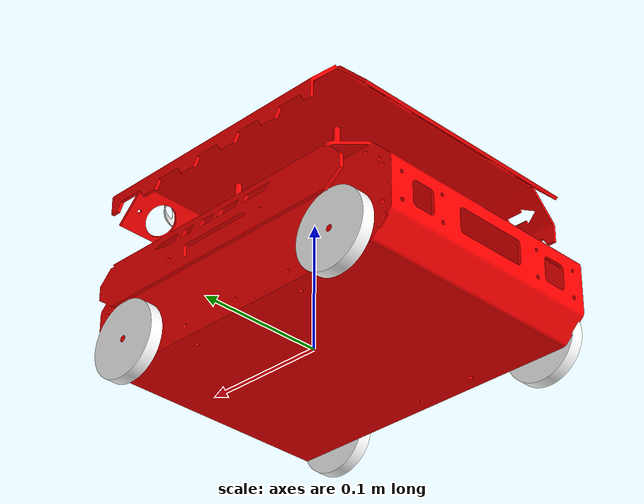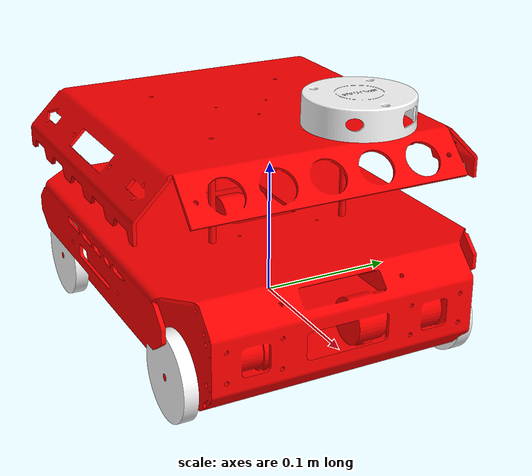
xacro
<?xml version="1.0" ?>
<robot name="bot" xmlns:xacro="http://www.ros.org/wiki/xacro">

<xacro:include filename="$(find bot_description)/urdf/materials.xacro" />
<xacro:include filename="$(find bot_description)/urdf/bot.trans" />
<xacro:include filename="$(find bot_description)/urdf/bot.gazebo" />
<link name="base_link">
  <inertial>
    <origin xyz="-0.0055277051026628235 -0.01676647852124394 0.04839358995337939" rpy="0 0 0"/>
    <mass value="7.190002859311317"/>
    <inertia ixx="0.054668" iyy="0.070139" izz="0.092571" ixy="-0.0" iyz="-0.0" ixz="0.000211"/>
  </inertial>
  <visual>
    <origin xyz="0 0 0" rpy="0 0 0"/>
    <geometry>
      <mesh filename="file://$(find bot_description)/meshes/base_link.stl" scale="0.001 0.001 0.001"/>
    </geometry>
    <material name="red"/>
  </visual>
  <collision>
    <origin xyz="0 0 0" rpy="0 0 0"/>
    <geometry>
      <mesh filename="file://$(find bot_description)/meshes/base_link.stl" scale="0.001 0.001 0.001"/>
    </geometry>
  </collision>
</link>

<link name="wheel_FR_1">
  <inertial>
    <origin xyz="-3.8859702899962656e-07 0.005000114536957659 3.9203400021940726e-07" rpy="0 0 0"/>
    <mass value="0.22041217708045135"/>
    <inertia ixx="5.2e-05" iyy="0.0001" izz="5.2e-05" ixy="0.0" iyz="0.0" ixz="0.0"/>
  </inertial>
  <visual>
    <origin xyz="-0.095294 0.124382 -0.009657" rpy="0 0 0"/>
    <geometry>
      <mesh filename="file://$(find bot_description)/meshes/wheel_FR_1.stl" scale="0.001 0.001 0.001"/>
    </geometry>
    <material name="black"/>
  </visual>
  <collision>
    <origin xyz="-0.095294 0.124382 -0.009657" rpy="0 0 0"/>
    <geometry>
      <mesh filename="file://$(find bot_description)/meshes/wheel_FR_1.stl" scale="0.001 0.001 0.001"/>
    </geometry>
  </collision>
</link>

<link name="wheel_FL_1">
  <inertial>
    <origin xyz="-3.8859702899962656e-07 -0.004999885463042489 3.9203400021940726e-07" rpy="0 0 0"/>
    <mass value="0.22041217708045135"/>
    <inertia ixx="5.2e-05" iyy="0.0001" izz="5.2e-05" ixy="-0.0" iyz="-0.0" ixz="0.0"/>
  </inertial>
  <visual>
    <origin xyz="-0.095294 -0.090848 -0.009657" rpy="0 0 0"/>
    <geometry>
      <mesh filename="file://$(find bot_description)/meshes/wheel_FL_1.stl" scale="0.001 0.001 0.001"/>
    </geometry>
    <material name="black"/>
  </visual>
  <collision>
    <origin xyz="-0.095294 -0.090848 -0.009657" rpy="0 0 0"/>
    <geometry>
      <mesh filename="file://$(find bot_description)/meshes/wheel_FL_1.stl" scale="0.001 0.001 0.001"/>
    </geometry>
  </collision>
</link>

<link name="wheel_BL_1">
  <inertial>
    <origin xyz="2.7234364716188786e-07 -0.004999885463042489 3.9203400025410173e-07" rpy="0 0 0"/>
    <mass value="0.22041217708045135"/>
    <inertia ixx="5.2e-05" iyy="0.0001" izz="5.2e-05" ixy="0.0" iyz="0.0" ixz="-0.0"/>
  </inertial>
  <visual>
    <origin xyz="0.105062 -0.090848 -0.009657" rpy="0 0 0"/>
    <geometry>
      <mesh filename="file://$(find bot_description)/meshes/wheel_BL_1.stl" scale="0.001 0.001 0.001"/>
    </geometry>
    <material name="black"/>
  </visual>
  <collision>
    <origin xyz="0.105062 -0.090848 -0.009657" rpy="0 0 0"/>
    <geometry>
      <mesh filename="file://$(find bot_description)/meshes/wheel_BL_1.stl" scale="0.001 0.001 0.001"/>
    </geometry>
  </collision>
</link>

<link name="wheel_BR_1">
  <inertial>
    <origin xyz="2.7234364716188786e-07 0.005000114536957659 3.920340002575712e-07" rpy="0 0 0"/>
    <mass value="0.22041217708045135"/>
    <inertia ixx="5.2e-05" iyy="0.0001" izz="5.2e-05" ixy="-0.0" iyz="0.0" ixz="0.0"/>
  </inertial>
  <visual>
    <origin xyz="0.105062 0.124382 -0.009657" rpy="0 0 0"/>
    <geometry>
      <mesh filename="file://$(find bot_description)/meshes/wheel_BR_1.stl" scale="0.001 0.001 0.001"/>
    </geometry>
    <material name="black"/>
  </visual>
  <collision>
    <origin xyz="0.105062 0.124382 -0.009657" rpy="0 0 0"/>
    <geometry>
      <mesh filename="file://$(find bot_description)/meshes/wheel_BR_1.stl" scale="0.001 0.001 0.001"/>
    </geometry>
  </collision>
</link>

<link name="lidar_1">
  <inertial>
    <origin xyz="-0.019462342414971134 -6.769946912503835e-05 0.00895032991039571" rpy="0 0 0"/>
    <mass value="0.059715818305858565"/>
    <inertia ixx="1e-05" iyy="1e-05" izz="1.3e-05" ixy="-0.0" iyz="-0.0" ixz="0.0"/>
  </inertial>
  <visual>
    <origin xyz="-0.014612 0.016767 -0.143013" rpy="0 0 0"/>
    <geometry>
      <mesh filename="file://$(find bot_description)/meshes/lidar_1.stl" scale="0.001 0.001 0.001"/>
    </geometry>
    <material name="black"/>
  </visual>
  <collision>
    <origin xyz="-0.014612 0.016767 -0.143013" rpy="0 0 0"/>
    <geometry>
      <mesh filename="file://$(find bot_description)/meshes/lidar_1.stl" scale="0.001 0.001 0.001"/>
    </geometry>
  </collision>
</link>

<joint name="Revolute 1" type="continuous">
  <origin xyz="0.095294 -0.124382 0.009657" rpy="0 0 0"/>
  <parent link="base_link"/>
  <child link="wheel_FR_1"/>
  <axis xyz="-0.0 1.0 0.0"/>
</joint>

<joint name="Revolute 2" type="continuous">
  <origin xyz="0.095294 0.090848 0.009657" rpy="0 0 0"/>
  <parent link="base_link"/>
  <child link="wheel_FL_1"/>
  <axis xyz="-0.0 1.0 0.0"/>
</joint>

<joint name="Revolute 3" type="continuous">
  <origin xyz="-0.105062 0.090848 0.009657" rpy="0 0 0"/>
  <parent link="base_link"/>
  <child link="wheel_BL_1"/>
  <axis xyz="0.0 1.0 -0.0"/>
</joint>

<joint name="Revolute 4" type="continuous">
  <origin xyz="-0.105062 -0.124382 0.009657" rpy="0 0 0"/>
  <parent link="base_link"/>
  <child link="wheel_BR_1"/>
  <axis xyz="0.0 1.0 -0.0"/>
</joint>

<joint name="Rigid 6" type="fixed">
  <origin xyz="0.014612 -0.016767 0.143013" rpy="0 0 0"/>
  <parent link="base_link"/>
  <child link="lidar_1"/>
</joint>

</robot>

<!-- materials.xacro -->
<robot name="bot" xmlns:xacro="http://www.ros.org/wiki/xacro" >

<material name="red">
  <color rgba="1.00 0.00 0.00 1.000"/>
</material>

<material name="black">
  <color rgba="1.00 1.00 1.00 1.000"/>
</material>
</robot>

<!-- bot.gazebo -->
<robot name="bot" xmlns:xacro="http://www.ros.org/wiki/xacro" >

<xacro:property name="body_color" value="Gazebo/Red" />
<xacro:property name="wheel_color" value="Gazebo/Black" />

<gazebo>
    <plugin name="gz::sim::systems::DiffDrive" filename="gz-sim-diff-drive-system">

        <!-- Wheel Information -->
        <left_joint>Revolute 2</left_joint>
        <left_joint>Revolute 3</left_joint>
        <right_joint>Revolute 1</right_joint>
        <right_joint>Revolute 4</right_joint>
        <wheel_separation>0.4</wheel_separation>
        <wheel_radius>0.03</wheel_radius>

        <!-- Input -->
        <topic>cmd_vel</topic>

        <!-- Output -->
        <frame_id>odom</frame_id>
        <child_frame_id>base_link</child_frame_id>
        <odom_topic>odom</odom_topic>
        <tf_topic>tf</tf_topic>

    </plugin>

    <plugin name="gz::sim::systems::JointStatePublisher" filename="gz-sim-joint-state-publisher-system">
        <topic>joint_states</topic>
        <joint_name>Revolute 1</joint_name>
        <joint_name>Revolute 2</joint_name>
        <joint_name>Revolute 3</joint_name>
        <joint_name>Revolute 4</joint_name>
    </plugin>
</gazebo>

  <gazebo reference="lidar_1">
    <material>${wheel_color}</material>
      <sensor name="laser" type="gpu_lidar">
          <pose> 0 0 0 0 0 0 </pose>
          <visualize>true</visualize>
          <update_rate>10</update_rate>
          <lidar>
            <scan>
                <horizontal>
                    <samples>360</samples>
                    <min_angle>-3.14</min_angle>
                    <max_angle>3.14</max_angle>
                </horizontal>
            </scan>
            <range>
                <min>0.3</min>
                <max>12</max>
            </range>
        </lidar>
        <topic>scan</topic>
        <gz_frame_id>lidar_1</gz_frame_id>
      </sensor>
  </gazebo>

<gazebo reference="base_link">
  <material>${body_color}</material>
  <mu1>0.1</mu1>
  <mu2>0.1</mu2>
  <self_collide>true</self_collide>
  <gravity>true</gravity>
</gazebo>

<gazebo reference="wheel_FR_1">
  <material>${wheel_color}</material>
  <mu1>0.1</mu1>
  <mu2>0.1</mu2>
  <self_collide>true</self_collide>
</gazebo>

<gazebo reference="wheel_FL_1">
  <material>${wheel_color}</material>
  <mu1>0.1</mu1>
  <mu2>0.1</mu2>
  <self_collide>true</self_collide>
</gazebo>

<gazebo reference="wheel_BL_1">
  <material>${wheel_color}</material>
  <mu1>0.1</mu1>
  <mu2>0.1</mu2>
  <self_collide>true</self_collide>
</gazebo>

<gazebo reference="wheel_BR_1">
  <material>${wheel_color}</material>
  <mu1>0.1</mu1>
  <mu2>0.1</mu2>
  <self_collide>true</self_collide>
</gazebo>

</robot>
